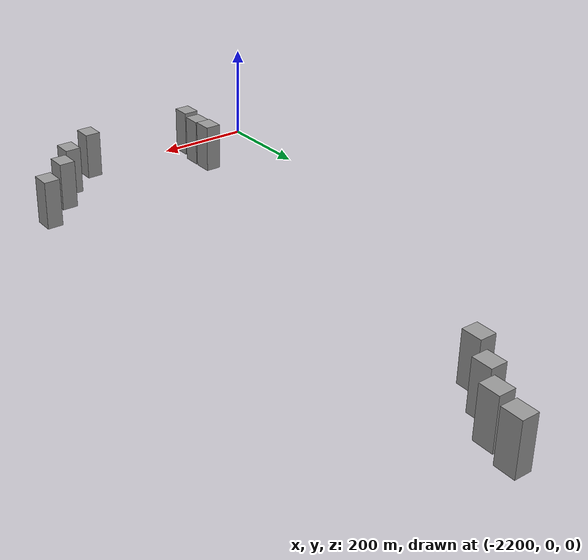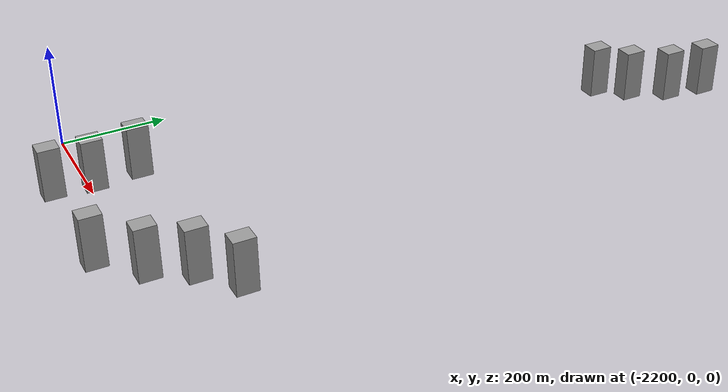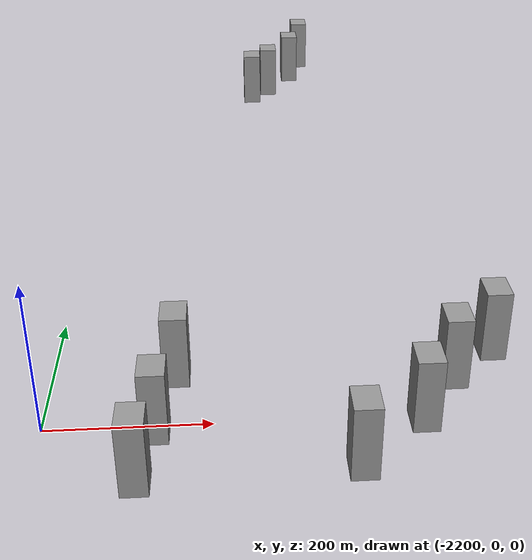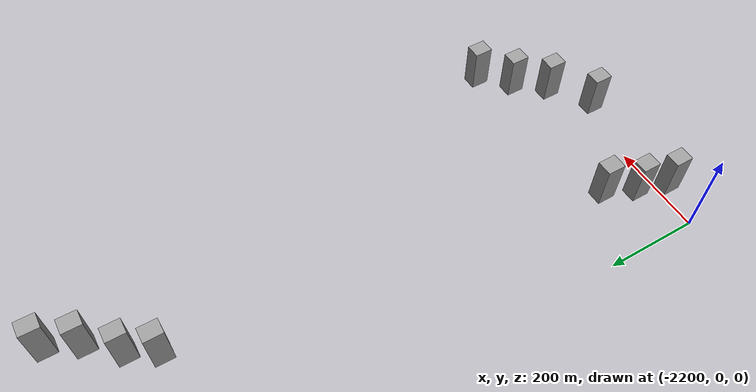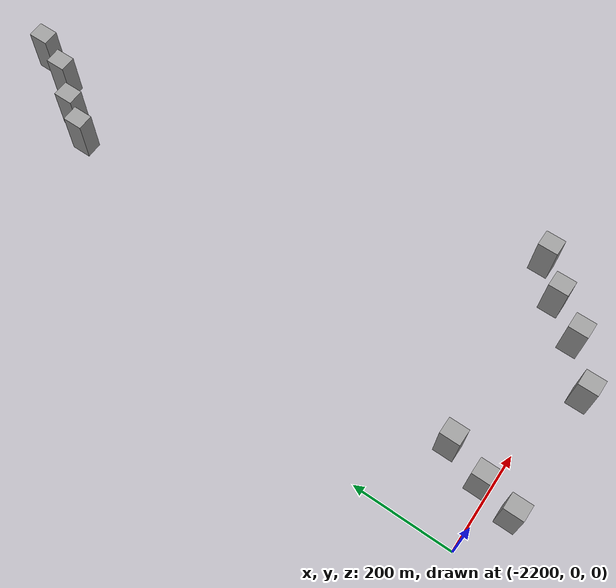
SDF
<sdf version="1.7">
 <world name="default">
  <model name="huge_building_8">
   <link name="link">
    <inertial>
     <mass>137299</mass>
     <inertia>
      <ixx>1.37911e+08</ixx>
      <ixy>0</ixy>
      <ixz>0</ixz>
      <iyy>1.32035e+08</iyy>
      <iyz>0</iyz>
      <izz>3.13216e+07</izz>
     </inertia>
    </inertial>
    <visual name="visual">
     <geometry><box><size>33.3468 40.3177 102.117</size></box></geometry>
     <material>
      <script><name>Gazebo/Grey</name><uri>file://media/materials/scripts/gazebo.material</uri></script>
      <shader type="pixel"/>
     </material>
    </visual>
    <collision name="collision">
     <geometry><box><size>33.3468 40.3177 102.117</size></box></geometry>
     <surface>
      <friction>
       <ode><mu>1</mu><mu2>1</mu2><fdir1>0 0 0</fdir1><slip1>0</slip1><slip2>0</slip2></ode>
       <torsional>
        <coefficient>1</coefficient>
        <patch_radius>0</patch_radius>
        <surface_radius>0</surface_radius>
        <use_patch_radius>1</use_patch_radius>
        <ode><slip>0</slip></ode>
       </torsional>
      </friction>
      <bounce><restitution_coefficient>0</restitution_coefficient><threshold>1e+06</threshold></bounce>
      <contact>
       <collide_without_contact>0</collide_without_contact>
       <collide_without_contact_bitmask>1</collide_without_contact_bitmask>
       <collide_bitmask>1</collide_bitmask>
       <ode>
        <soft_cfm>0</soft_cfm>
        <soft_erp>0.2</soft_erp>
        <kp>1e+13</kp>
        <kd>1</kd>
        <max_vel>0.01</max_vel>
        <min_depth>0</min_depth>
       </ode>
       <bullet>
        <split_impulse>1</split_impulse>
        <split_impulse_penetration_threshold>-0.01</split_impulse_penetration_threshold>
        <soft_cfm>0</soft_cfm>
        <soft_erp>0.2</soft_erp>
        <kp>1e+13</kp>
        <kd>1</kd>
       </bullet>
      </contact>
     </surface>
    </collision>
   </link>
   <static>0</static>
   <pose>-1923.22 1028.99 36 0 -0 0</pose>
  </model>
  <model name="huge_building_64">
   <link name="link">
    <inertial>
     <mass>137299</mass>
     <inertia>
      <ixx>1.37911e+08</ixx>
      <ixy>0</ixy>
      <ixz>0</ixz>
      <iyy>1.32035e+08</iyy>
      <iyz>0</iyz>
      <izz>3.13216e+07</izz>
     </inertia>
    </inertial>
    <visual name="visual">
     <geometry><box><size>33.3468 40.3177 102.117</size></box></geometry>
     <material>
      <script><name>Gazebo/Grey</name><uri>file://media/materials/scripts/gazebo.material</uri></script>
      <shader type="pixel"/>
     </material>
    </visual>
    <collision name="collision">
     <geometry><box><size>33.3468 40.3177 102.117</size></box></geometry>
     <surface>
      <friction>
       <ode><mu>1</mu><mu2>1</mu2><fdir1>0 0 0</fdir1><slip1>0</slip1><slip2>0</slip2></ode>
       <torsional>
        <coefficient>1</coefficient>
        <patch_radius>0</patch_radius>
        <surface_radius>0</surface_radius>
        <use_patch_radius>1</use_patch_radius>
        <ode><slip>0</slip></ode>
       </torsional>
      </friction>
      <bounce><restitution_coefficient>0</restitution_coefficient><threshold>1e+06</threshold></bounce>
      <contact>
       <collide_without_contact>0</collide_without_contact>
       <collide_without_contact_bitmask>1</collide_without_contact_bitmask>
       <collide_bitmask>1</collide_bitmask>
       <ode>
        <soft_cfm>0</soft_cfm>
        <soft_erp>0.2</soft_erp>
        <kp>1e+13</kp>
        <kd>1</kd>
        <max_vel>0.01</max_vel>
        <min_depth>0</min_depth>
       </ode>
       <bullet>
        <split_impulse>1</split_impulse>
        <split_impulse_penetration_threshold>-0.01</split_impulse_penetration_threshold>
        <soft_cfm>0</soft_cfm>
        <soft_erp>0.2</soft_erp>
        <kp>1e+13</kp>
        <kd>1</kd>
       </bullet>
      </contact>
     </surface>
    </collision>
   </link>
   <static>0</static>
   <pose>-1886.47 1085.81 30 0 -0 0</pose>
  </model>
  <model name="huge_building_65">
   <link name="link">
    <inertial>
     <mass>137299</mass>
     <inertia>
      <ixx>1.37911e+08</ixx>
      <ixy>0</ixy>
      <ixz>0</ixz>
      <iyy>1.32035e+08</iyy>
      <iyz>0</iyz>
      <izz>3.13216e+07</izz>
     </inertia>
    </inertial>
    <visual name="visual">
     <geometry><box><size>33.3468 40.3177 102.117</size></box></geometry>
     <material>
      <script><name>Gazebo/Grey</name><uri>file://media/materials/scripts/gazebo.material</uri></script>
      <shader type="pixel"/>
     </material>
    </visual>
    <collision name="collision">
     <geometry><box><size>33.3468 40.3177 102.117</size></box></geometry>
     <surface>
      <friction>
       <ode><mu>1</mu><mu2>1</mu2><fdir1>0 0 0</fdir1><slip1>0</slip1><slip2>0</slip2></ode>
       <torsional>
        <coefficient>1</coefficient>
        <patch_radius>0</patch_radius>
        <surface_radius>0</surface_radius>
        <use_patch_radius>1</use_patch_radius>
        <ode><slip>0</slip></ode>
       </torsional>
      </friction>
      <bounce><restitution_coefficient>0</restitution_coefficient><threshold>1e+06</threshold></bounce>
      <contact>
       <collide_without_contact>0</collide_without_contact>
       <collide_without_contact_bitmask>1</collide_without_contact_bitmask>
       <collide_bitmask>1</collide_bitmask>
       <ode>
        <soft_cfm>0</soft_cfm>
        <soft_erp>0.2</soft_erp>
        <kp>1e+13</kp>
        <kd>1</kd>
        <max_vel>0.01</max_vel>
        <min_depth>0</min_depth>
       </ode>
       <bullet>
        <split_impulse>1</split_impulse>
        <split_impulse_penetration_threshold>-0.01</split_impulse_penetration_threshold>
        <soft_cfm>0</soft_cfm>
        <soft_erp>0.2</soft_erp>
        <kp>1e+13</kp>
        <kd>1</kd>
       </bullet>
      </contact>
     </surface>
    </collision>
   </link>
   <static>0</static>
   <pose>-1837.06 1145.73 38 0 -0 0</pose>
  </model>
  <model name="huge_building_66">
   <link name="link">
    <inertial>
     <mass>137299</mass>
     <inertia>
      <ixx>1.37911e+08</ixx>
      <ixy>0</ixy>
      <ixz>0</ixz>
      <iyy>1.32035e+08</iyy>
      <iyz>0</iyz>
      <izz>3.13216e+07</izz>
     </inertia>
    </inertial>
    <visual name="visual">
     <geometry><box><size>33.3468 40.3177 102.117</size></box></geometry>
     <material>
      <script><name>Gazebo/Grey</name><uri>file://media/materials/scripts/gazebo.material</uri></script>
      <shader type="pixel"/>
     </material>
    </visual>
    <collision name="collision">
     <geometry><box><size>33.3468 40.3177 102.117</size></box></geometry>
     <surface>
      <friction>
       <ode><mu>1</mu><mu2>1</mu2><fdir1>0 0 0</fdir1><slip1>0</slip1><slip2>0</slip2></ode>
       <torsional>
        <coefficient>1</coefficient>
        <patch_radius>0</patch_radius>
        <surface_radius>0</surface_radius>
        <use_patch_radius>1</use_patch_radius>
        <ode><slip>0</slip></ode>
       </torsional>
      </friction>
      <bounce><restitution_coefficient>0</restitution_coefficient><threshold>1e+06</threshold></bounce>
      <contact>
       <collide_without_contact>0</collide_without_contact>
       <collide_without_contact_bitmask>1</collide_without_contact_bitmask>
       <collide_bitmask>1</collide_bitmask>
       <ode>
        <soft_cfm>0</soft_cfm>
        <soft_erp>0.2</soft_erp>
        <kp>1e+13</kp>
        <kd>1</kd>
        <max_vel>0.01</max_vel>
        <min_depth>0</min_depth>
       </ode>
       <bullet>
        <split_impulse>1</split_impulse>
        <split_impulse_penetration_threshold>-0.01</split_impulse_penetration_threshold>
        <soft_cfm>0</soft_cfm>
        <soft_erp>0.2</soft_erp>
        <kp>1e+13</kp>
        <kd>1</kd>
       </bullet>
      </contact>
     </surface>
    </collision>
   </link>
   <static>0</static>
   <pose>-1811.27 1209.9 47 0 -0 0</pose>
  </model>
  <model name="huge_building_85">
   <link name="link">
    <inertial>
     <mass>137299</mass>
     <inertia>
      <ixx>1.37911e+08</ixx>
      <ixy>0</ixy>
      <ixz>0</ixz>
      <iyy>1.32035e+08</iyy>
      <iyz>0</iyz>
      <izz>3.13216e+07</izz>
     </inertia>
    </inertial>
    <visual name="visual">
     <geometry><box><size>33.3468 40.3177 102.117</size></box></geometry>
     <material>
      <script><name>Gazebo/Grey</name><uri>file://media/materials/scripts/gazebo.material</uri></script>
      <shader type="pixel"/>
     </material>
    </visual>
    <collision name="collision">
     <geometry><box><size>33.3468 40.3177 102.117</size></box></geometry>
     <surface>
      <friction>
       <ode><mu>1</mu><mu2>1</mu2><fdir1>0 0 0</fdir1><slip1>0</slip1><slip2>0</slip2></ode>
       <torsional>
        <coefficient>1</coefficient>
        <patch_radius>0</patch_radius>
        <surface_radius>0</surface_radius>
        <use_patch_radius>1</use_patch_radius>
        <ode><slip>0</slip></ode>
       </torsional>
      </friction>
      <bounce><restitution_coefficient>0</restitution_coefficient><threshold>1e+06</threshold></bounce>
      <contact>
       <collide_without_contact>0</collide_without_contact>
       <collide_without_contact_bitmask>1</collide_without_contact_bitmask>
       <collide_bitmask>1</collide_bitmask>
       <ode>
        <soft_cfm>0</soft_cfm>
        <soft_erp>0.2</soft_erp>
        <kp>1e+13</kp>
        <kd>1</kd>
        <max_vel>0.01</max_vel>
        <min_depth>0</min_depth>
       </ode>
       <bullet>
        <split_impulse>1</split_impulse>
        <split_impulse_penetration_threshold>-0.01</split_impulse_penetration_threshold>
        <soft_cfm>0</soft_cfm>
        <soft_erp>0.2</soft_erp>
        <kp>1e+13</kp>
        <kd>1</kd>
       </bullet>
      </contact>
     </surface>
    </collision>
   </link>
   <static>0</static>
   <pose>-1637.27 137.485 34 0 -0 0</pose>
  </model>
  <model name="huge_building_86">
   <link name="link">
    <inertial>
     <mass>137299</mass>
     <inertia>
      <ixx>1.37911e+08</ixx>
      <ixy>0</ixy>
      <ixz>0</ixz>
      <iyy>1.32035e+08</iyy>
      <iyz>0</iyz>
      <izz>3.13216e+07</izz>
     </inertia>
    </inertial>
    <visual name="visual">
     <geometry><box><size>33.3468 40.3177 102.117</size></box></geometry>
     <material>
      <script><name>Gazebo/Grey</name><uri>file://media/materials/scripts/gazebo.material</uri></script>
      <shader type="pixel"/>
     </material>
    </visual>
    <collision name="collision">
     <geometry><box><size>33.3468 40.3177 102.117</size></box></geometry>
     <surface>
      <friction>
       <ode><mu>1</mu><mu2>1</mu2><fdir1>0 0 0</fdir1><slip1>0</slip1><slip2>0</slip2></ode>
       <torsional>
        <coefficient>1</coefficient>
        <patch_radius>0</patch_radius>
        <surface_radius>0</surface_radius>
        <use_patch_radius>1</use_patch_radius>
        <ode><slip>0</slip></ode>
       </torsional>
      </friction>
      <bounce><restitution_coefficient>0</restitution_coefficient><threshold>1e+06</threshold></bounce>
      <contact>
       <collide_without_contact>0</collide_without_contact>
       <collide_without_contact_bitmask>1</collide_without_contact_bitmask>
       <collide_bitmask>1</collide_bitmask>
       <ode>
        <soft_cfm>0</soft_cfm>
        <soft_erp>0.2</soft_erp>
        <kp>1e+13</kp>
        <kd>1</kd>
        <max_vel>0.01</max_vel>
        <min_depth>0</min_depth>
       </ode>
       <bullet>
        <split_impulse>1</split_impulse>
        <split_impulse_penetration_threshold>-0.01</split_impulse_penetration_threshold>
        <soft_cfm>0</soft_cfm>
        <soft_erp>0.2</soft_erp>
        <kp>1e+13</kp>
        <kd>1</kd>
       </bullet>
      </contact>
     </surface>
    </collision>
   </link>
   <static>0</static>
   <pose>-1700.22 81.9659 36 0 -0 0</pose>
  </model>
  <model name="huge_building_87">
   <link name="link">
    <inertial>
     <mass>137299</mass>
     <inertia>
      <ixx>1.37911e+08</ixx>
      <ixy>0</ixy>
      <ixz>0</ixz>
      <iyy>1.32035e+08</iyy>
      <iyz>0</iyz>
      <izz>3.13216e+07</izz>
     </inertia>
    </inertial>
    <visual name="visual">
     <geometry><box><size>33.3468 40.3177 102.117</size></box></geometry>
     <material>
      <script><name>Gazebo/Grey</name><uri>file://media/materials/scripts/gazebo.material</uri></script>
      <shader type="pixel"/>
     </material>
    </visual>
    <collision name="collision">
     <geometry><box><size>33.3468 40.3177 102.117</size></box></geometry>
     <surface>
      <friction>
       <ode><mu>1</mu><mu2>1</mu2><fdir1>0 0 0</fdir1><slip1>0</slip1><slip2>0</slip2></ode>
       <torsional>
        <coefficient>1</coefficient>
        <patch_radius>0</patch_radius>
        <surface_radius>0</surface_radius>
        <use_patch_radius>1</use_patch_radius>
        <ode><slip>0</slip></ode>
       </torsional>
      </friction>
      <bounce><restitution_coefficient>0</restitution_coefficient><threshold>1e+06</threshold></bounce>
      <contact>
       <collide_without_contact>0</collide_without_contact>
       <collide_without_contact_bitmask>1</collide_without_contact_bitmask>
       <collide_bitmask>1</collide_bitmask>
       <ode>
        <soft_cfm>0</soft_cfm>
        <soft_erp>0.2</soft_erp>
        <kp>1e+13</kp>
        <kd>1</kd>
        <max_vel>0.01</max_vel>
        <min_depth>0</min_depth>
       </ode>
       <bullet>
        <split_impulse>1</split_impulse>
        <split_impulse_penetration_threshold>-0.01</split_impulse_penetration_threshold>
        <soft_cfm>0</soft_cfm>
        <soft_erp>0.2</soft_erp>
        <kp>1e+13</kp>
        <kd>1</kd>
       </bullet>
      </contact>
     </surface>
    </collision>
   </link>
   <static>0</static>
   <pose>-1749 14.2723 30 0 -0 0</pose>
  </model>
  <model name="huge_building_88">
   <link name="link">
    <inertial>
     <mass>137299</mass>
     <inertia>
      <ixx>1.37911e+08</ixx>
      <ixy>0</ixy>
      <ixz>0</ixz>
      <iyy>1.32035e+08</iyy>
      <iyz>0</iyz>
      <izz>3.13216e+07</izz>
     </inertia>
    </inertial>
    <visual name="visual">
     <geometry><box><size>33.3468 40.3177 102.117</size></box></geometry>
     <material>
      <script><name>Gazebo/Grey</name><uri>file://media/materials/scripts/gazebo.material</uri></script>
      <shader type="pixel"/>
     </material>
    </visual>
    <collision name="collision">
     <geometry><box><size>33.3468 40.3177 102.117</size></box></geometry>
     <surface>
      <friction>
       <ode><mu>1</mu><mu2>1</mu2><fdir1>0 0 0</fdir1><slip1>0</slip1><slip2>0</slip2></ode>
       <torsional>
        <coefficient>1</coefficient>
        <patch_radius>0</patch_radius>
        <surface_radius>0</surface_radius>
        <use_patch_radius>1</use_patch_radius>
        <ode><slip>0</slip></ode>
       </torsional>
      </friction>
      <bounce><restitution_coefficient>0</restitution_coefficient><threshold>1e+06</threshold></bounce>
      <contact>
       <collide_without_contact>0</collide_without_contact>
       <collide_without_contact_bitmask>1</collide_without_contact_bitmask>
       <collide_bitmask>1</collide_bitmask>
       <ode>
        <soft_cfm>0</soft_cfm>
        <soft_erp>0.2</soft_erp>
        <kp>1e+13</kp>
        <kd>1</kd>
        <max_vel>0.01</max_vel>
        <min_depth>0</min_depth>
       </ode>
       <bullet>
        <split_impulse>1</split_impulse>
        <split_impulse_penetration_threshold>-0.01</split_impulse_penetration_threshold>
        <soft_cfm>0</soft_cfm>
        <soft_erp>0.2</soft_erp>
        <kp>1e+13</kp>
        <kd>1</kd>
       </bullet>
      </contact>
     </surface>
    </collision>
   </link>
   <static>0</static>
   <pose>-1831.27 -50.5689 23 0 -0 0</pose>
  </model>
  <model name="huge_building_89">
   <link name="link">
    <inertial>
     <mass>137299</mass>
     <inertia>
      <ixx>1.37911e+08</ixx>
      <ixy>0</ixy>
      <ixz>0</ixz>
      <iyy>1.32035e+08</iyy>
      <iyz>0</iyz>
      <izz>3.13216e+07</izz>
     </inertia>
    </inertial>
    <visual name="visual">
     <geometry><box><size>33.3468 40.3177 102.117</size></box></geometry>
     <material>
      <script><name>Gazebo/Grey</name><uri>file://media/materials/scripts/gazebo.material</uri></script>
      <shader type="pixel"/>
     </material>
    </visual>
    <collision name="collision">
     <geometry><box><size>33.3468 40.3177 102.117</size></box></geometry>
     <surface>
      <friction>
       <ode><mu>1</mu><mu2>1</mu2><fdir1>0 0 0</fdir1><slip1>0</slip1><slip2>0</slip2></ode>
       <torsional>
        <coefficient>1</coefficient>
        <patch_radius>0</patch_radius>
        <surface_radius>0</surface_radius>
        <use_patch_radius>1</use_patch_radius>
        <ode><slip>0</slip></ode>
       </torsional>
      </friction>
      <bounce><restitution_coefficient>0</restitution_coefficient><threshold>1e+06</threshold></bounce>
      <contact>
       <collide_without_contact>0</collide_without_contact>
       <collide_without_contact_bitmask>1</collide_without_contact_bitmask>
       <collide_bitmask>1</collide_bitmask>
       <ode>
        <soft_cfm>0</soft_cfm>
        <soft_erp>0.2</soft_erp>
        <kp>1e+13</kp>
        <kd>1</kd>
        <max_vel>0.01</max_vel>
        <min_depth>0</min_depth>
       </ode>
       <bullet>
        <split_impulse>1</split_impulse>
        <split_impulse_penetration_threshold>-0.01</split_impulse_penetration_threshold>
        <soft_cfm>0</soft_cfm>
        <soft_erp>0.2</soft_erp>
        <kp>1e+13</kp>
        <kd>1</kd>
       </bullet>
      </contact>
     </surface>
    </collision>
   </link>
   <static>0</static>
   <pose>-2089.74 -51.4153 14 0 -0 0</pose>
  </model>
  <model name="huge_building_90">
   <link name="link">
    <inertial>
     <mass>137299</mass>
     <inertia>
      <ixx>1.37911e+08</ixx>
      <ixy>0</ixy>
      <ixz>0</ixz>
      <iyy>1.32035e+08</iyy>
      <iyz>0</iyz>
      <izz>3.13216e+07</izz>
     </inertia>
    </inertial>
    <visual name="visual">
     <geometry><box><size>33.3468 40.3177 102.117</size></box></geometry>
     <material>
      <script><name>Gazebo/Grey</name><uri>file://media/materials/scripts/gazebo.material</uri></script>
      <shader type="pixel"/>
     </material>
    </visual>
    <collision name="collision">
     <geometry><box><size>33.3468 40.3177 102.117</size></box></geometry>
     <surface>
      <friction>
       <ode><mu>1</mu><mu2>1</mu2><fdir1>0 0 0</fdir1><slip1>0</slip1><slip2>0</slip2></ode>
       <torsional>
        <coefficient>1</coefficient>
        <patch_radius>0</patch_radius>
        <surface_radius>0</surface_radius>
        <use_patch_radius>1</use_patch_radius>
        <ode><slip>0</slip></ode>
       </torsional>
      </friction>
      <bounce><restitution_coefficient>0</restitution_coefficient><threshold>1e+06</threshold></bounce>
      <contact>
       <collide_without_contact>0</collide_without_contact>
       <collide_without_contact_bitmask>1</collide_without_contact_bitmask>
       <collide_bitmask>1</collide_bitmask>
       <ode>
        <soft_cfm>0</soft_cfm>
        <soft_erp>0.2</soft_erp>
        <kp>1e+13</kp>
        <kd>1</kd>
        <max_vel>0.01</max_vel>
        <min_depth>0</min_depth>
       </ode>
       <bullet>
        <split_impulse>1</split_impulse>
        <split_impulse_penetration_threshold>-0.01</split_impulse_penetration_threshold>
        <soft_cfm>0</soft_cfm>
        <soft_erp>0.2</soft_erp>
        <kp>1e+13</kp>
        <kd>1</kd>
       </bullet>
      </contact>
     </surface>
    </collision>
   </link>
   <static>0</static>
   <pose>-2070.88 21.6588 21 0 -0 0</pose>
  </model>
  <model name="huge_building_91">
   <link name="link">
    <inertial>
     <mass>137299</mass>
     <inertia>
      <ixx>1.37911e+08</ixx>
      <ixy>0</ixy>
      <ixz>0</ixz>
      <iyy>1.32035e+08</iyy>
      <iyz>0</iyz>
      <izz>3.13216e+07</izz>
     </inertia>
    </inertial>
    <visual name="visual">
     <geometry><box><size>33.3468 40.3177 102.117</size></box></geometry>
     <material>
      <script><name>Gazebo/Grey</name><uri>file://media/materials/scripts/gazebo.material</uri></script>
      <shader type="pixel"/>
     </material>
    </visual>
    <collision name="collision">
     <geometry><box><size>33.3468 40.3177 102.117</size></box></geometry>
     <surface>
      <friction>
       <ode><mu>1</mu><mu2>1</mu2><fdir1>0 0 0</fdir1><slip1>0</slip1><slip2>0</slip2></ode>
       <torsional>
        <coefficient>1</coefficient>
        <patch_radius>0</patch_radius>
        <surface_radius>0</surface_radius>
        <use_patch_radius>1</use_patch_radius>
        <ode><slip>0</slip></ode>
       </torsional>
      </friction>
      <bounce><restitution_coefficient>0</restitution_coefficient><threshold>1e+06</threshold></bounce>
      <contact>
       <collide_without_contact>0</collide_without_contact>
       <collide_without_contact_bitmask>1</collide_without_contact_bitmask>
       <collide_bitmask>1</collide_bitmask>
       <ode>
        <soft_cfm>0</soft_cfm>
        <soft_erp>0.2</soft_erp>
        <kp>1e+13</kp>
        <kd>1</kd>
        <max_vel>0.01</max_vel>
        <min_depth>0</min_depth>
       </ode>
       <bullet>
        <split_impulse>1</split_impulse>
        <split_impulse_penetration_threshold>-0.01</split_impulse_penetration_threshold>
        <soft_cfm>0</soft_cfm>
        <soft_erp>0.2</soft_erp>
        <kp>1e+13</kp>
        <kd>1</kd>
       </bullet>
      </contact>
     </surface>
    </collision>
   </link>
   <static>0</static>
   <pose>-2047.85 100.632 40 0 -0 0</pose>
  </model>
 </world>
</sdf>
